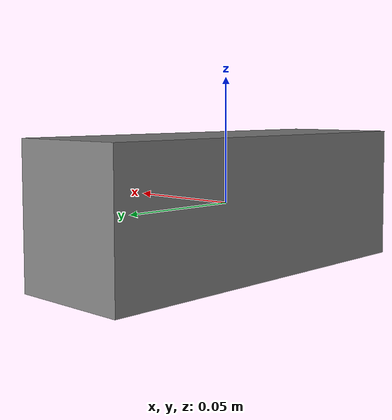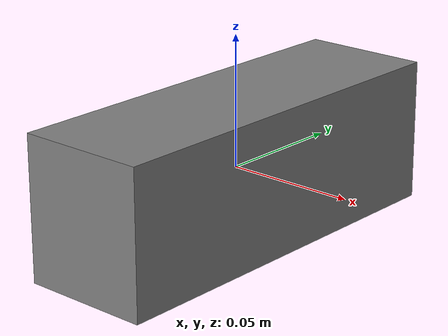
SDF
<?xml version='1.0'?>
<sdf version="1.4">
<model name="box2">
    <pose>0 0 0 0 0 1.57079632679 </pose>
    <link name="link">

      <inertial>
        <mass>1.0</mass>
        <inertia> <!-- inertias are tricky to compute -->
          <!-- http://gazebosim.org/tutorials?tut=inertia&cat=build_robot -->
          <ixx>0.083</ixx>       <!-- for a box: ixx = 0.083 * mass * (y*y + z*z) -->
          <ixy>0.0</ixy>         <!-- for a box: ixy = 0 -->
          <ixz>0.0</ixz>         <!-- for a box: ixz = 0 -->
          <iyy>0.083</iyy>       <!-- for a box: iyy = 0.083 * mass * (x*x + z*z) -->
          <iyz>0.0</iyz>         <!-- for a box: iyz = 0 -->
          <izz>0.083</izz>       <!-- for a box: izz = 0.083 * mass * (x*x + y*y) -->
        </inertia>
      </inertial>
      <collision name="collision">
        <geometry>
          <box>
            <size>0.155 0.05 0.055</size>
          </box>
        </geometry>
      </collision>
      <visual name="visual">
        <geometry>
          <box>
            <size>0.155 0.05 0.055</size>
          </box>
        </geometry>
        <material>
          <ambient>0 0 1 1.0</ambient>
          <diffuse>0.50754 0.50754 0.50754 1.0</diffuse>
          <specular>0.508273 0.508273 0.508273 1.0</specular>
          <emissive>0.0 0.0 0.0 0.0</emissive>
        </material>
      </visual>
    </link>
  </model>
</sdf>
